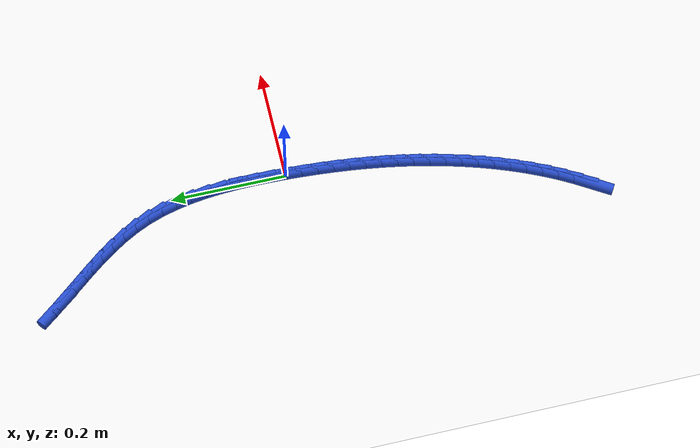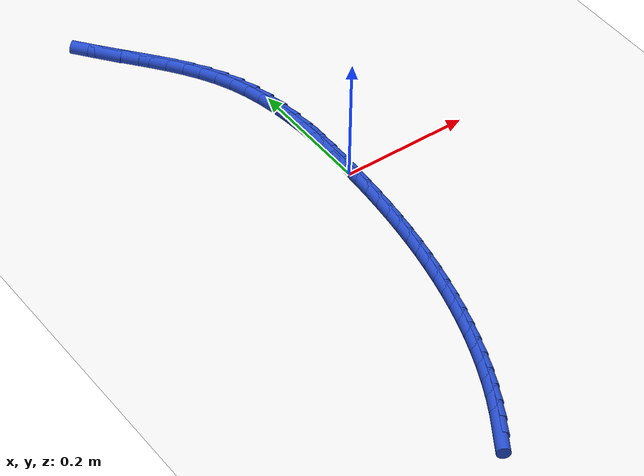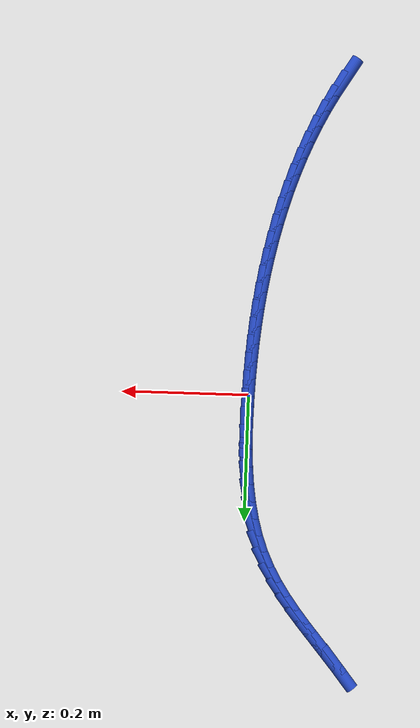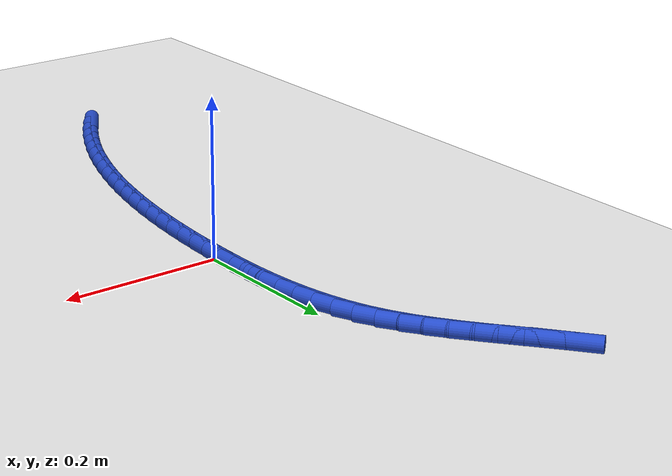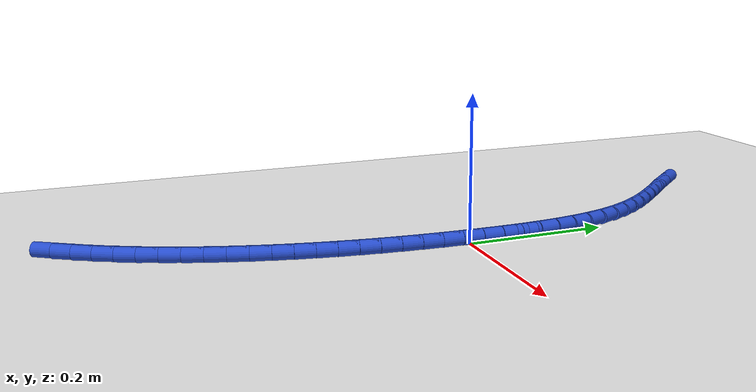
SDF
<sdf version="1.6">
 <world name="default">
  <model name="ground_plane">
   <static>1</static>
   <link name="link">
    <collision name="collision">
     <geometry><plane><normal>0 0 1</normal><size>100 100</size></plane></geometry>
     <surface><friction><ode><mu>100</mu><mu2>50</mu2></ode></friction></surface>
    </collision>
    <visual name="visual">
     <cast_shadows>0</cast_shadows>
     <geometry><plane><normal>0 0 1</normal><size>100 100</size></plane></geometry>
     <material>
      <script><uri>file://media/materials/scripts/gazebo.material</uri><name>Gazebo/WhiteGlow</name></script>
     </material>
    </visual>
   </link>
  </model>
  <model name="line">
   <link name="link_0">
    <pose>-2.3744027577432547e-17 0.0 0.01 0 1.57 1.5411322489004222</pose>
    <collision name="collision">
     <geometry><cylinder><radius>0.01</radius><length>0.08</length></cylinder></geometry>
    </collision>
    <visual name="visual">
     <material>
      <script><name>Gazebo/Blue</name><uri>file://media/materials/scripts/gazebo.material</uri></script>
     </material>
     <geometry><cylinder><radius>0.01</radius><length>0.08</length></cylinder></geometry>
    </visual>
   </link>
   <link name="link_1">
    <pose>0.0008416605181511366 0.028364732303287784 0.01 0 1.57 1.5624884888304773</pose>
    <collision name="collision">
     <geometry><cylinder><radius>0.01</radius><length>0.08</length></cylinder></geometry>
    </collision>
    <visual name="visual">
     <material>
      <script><name>Gazebo/Blue</name><uri>file://media/materials/scripts/gazebo.material</uri></script>
     </material>
     <geometry><cylinder><radius>0.01</radius><length>0.08</length></cylinder></geometry>
    </visual>
   </link>
   <link name="link_2">
    <pose>0.0010783313936273008 0.056851738362290995 0.01 0 1.57 -1.5515653110899565</pose>
    <collision name="collision">
     <geometry><cylinder><radius>0.01</radius><length>0.08</length></cylinder></geometry>
    </collision>
    <visual name="visual">
     <material>
      <script><name>Gazebo/Blue</name><uri>file://media/materials/scripts/gazebo.material</uri></script>
     </material>
     <geometry><cylinder><radius>0.01</radius><length>0.08</length></cylinder></geometry>
    </visual>
   </link>
   <link name="link_3">
    <pose>0.0005308624911587484 0.08531624687828525 0.01 0 1.57 -1.517458055189469</pose>
    <collision name="collision">
     <geometry><cylinder><radius>0.01</radius><length>0.08</length></cylinder></geometry>
    </collision>
    <visual name="visual">
     <material>
      <script><name>Gazebo/Blue</name><uri>file://media/materials/scripts/gazebo.material</uri></script>
     </material>
     <geometry><cylinder><radius>0.01</radius><length>0.08</length></cylinder></geometry>
    </visual>
   </link>
   <link name="link_4">
    <pose>-0.0009798963245242348 0.11361348655254594 0.01 0 1.57 -1.476271643704682</pose>
    <collision name="collision">
     <geometry><cylinder><radius>0.01</radius><length>0.08</length></cylinder></geometry>
    </collision>
    <visual name="visual">
     <material>
      <script><name>Gazebo/Blue</name><uri>file://media/materials/scripts/gazebo.material</uri></script>
     </material>
     <geometry><cylinder><radius>0.01</radius><length>0.08</length></cylinder></geometry>
    </visual>
   </link>
   <link name="link_5">
    <pose>-0.0036330951886913657 0.14159868608634874 0.01 0 1.57 -1.4273986378362373</pose>
    <collision name="collision">
     <geometry><cylinder><radius>0.01</radius><length>0.08</length></cylinder></geometry>
    </collision>
    <visual name="visual">
     <material>
      <script><name>Gazebo/Blue</name><uri>file://media/materials/scripts/gazebo.material</uri></script>
     </material>
     <geometry><cylinder><radius>0.01</radius><length>0.08</length></cylinder></geometry>
    </visual>
   </link>
   <link name="link_6">
    <pose>-0.007607884236612364 0.16912707418096912 0.01 0 1.57 -1.370182999832</pose>
    <collision name="collision">
     <geometry><cylinder><radius>0.01</radius><length>0.08</length></cylinder></geometry>
    </collision>
    <visual name="visual">
     <material>
      <script><name>Gazebo/Blue</name><uri>file://media/materials/scripts/gazebo.material</uri></script>
     </material>
     <geometry><cylinder><radius>0.01</radius><length>0.08</length></cylinder></geometry>
    </visual>
   </link>
   <link name="link_7">
    <pose>-0.013083413603556944 0.19605387953768258 0.01 0 1.57 -1.3040005277934443</pose>
    <collision name="collision">
     <geometry><cylinder><radius>0.01</radius><length>0.08</length></cylinder></geometry>
    </collision>
    <visual name="visual">
     <material>
      <script><name>Gazebo/Blue</name><uri>file://media/materials/scripts/gazebo.material</uri></script>
     </material>
     <geometry><cylinder><radius>0.01</radius><length>0.08</length></cylinder></geometry>
    </visual>
   </link>
   <link name="link_8">
    <pose>-0.020238833424794822 0.22223433085776473 0.01 0 1.57 -1.2283841883100188</pose>
    <collision name="collision">
     <geometry><cylinder><radius>0.01</radius><length>0.08</length></cylinder></geometry>
    </collision>
    <visual name="visual">
     <material>
      <script><name>Gazebo/Blue</name><uri>file://media/materials/scripts/gazebo.material</uri></script>
     </material>
     <geometry><cylinder><radius>0.01</radius><length>0.08</length></cylinder></geometry>
    </visual>
   </link>
   <link name="link_9">
    <pose>-0.029253293835595714 0.2475236568424911 0.01 0 1.57 -1.1437988316661556</pose>
    <collision name="collision">
     <geometry><cylinder><radius>0.01</radius><length>0.08</length></cylinder></geometry>
    </collision>
    <visual name="visual">
     <material>
      <script><name>Gazebo/Blue</name><uri>file://media/materials/scripts/gazebo.material</uri></script>
     </material>
     <geometry><cylinder><radius>0.01</radius><length>0.08</length></cylinder></geometry>
    </visual>
   </link>
   <link name="link_10">
    <pose>-0.04029260205205641 0.2717863004527238 0.01 0 1.57 -1.062321657851553</pose>
    <collision name="collision">
     <geometry><cylinder><radius>0.01</radius><length>0.08</length></cylinder></geometry>
    </collision>
    <visual name="visual">
     <material>
      <script><name>Gazebo/Blue</name><uri>file://media/materials/scripts/gazebo.material</uri></script>
     </material>
     <geometry><cylinder><radius>0.01</radius><length>0.08</length></cylinder></geometry>
    </visual>
   </link>
   <link name="link_11">
    <pose>-0.053266393164274575 0.295063610200294 0.01 0 1.57 -0.9954584736030949</pose>
    <collision name="collision">
     <geometry><cylinder><radius>0.01</radius><length>0.08</length></cylinder></geometry>
    </collision>
    <visual name="visual">
     <material>
      <script><name>Gazebo/Blue</name><uri>file://media/materials/scripts/gazebo.material</uri></script>
     </material>
     <geometry><cylinder><radius>0.01</radius><length>0.08</length></cylinder></geometry>
    </visual>
   </link>
   <link name="link_12">
    <pose>-0.06785349010132992 0.31755632724116223 0.01 0 1.57 -0.9439994217995893</pose>
    <collision name="collision">
     <geometry><cylinder><radius>0.01</radius><length>0.08</length></cylinder></geometry>
    </collision>
    <visual name="visual">
     <material>
      <script><name>Gazebo/Blue</name><uri>file://media/materials/scripts/gazebo.material</uri></script>
     </material>
     <geometry><cylinder><radius>0.01</radius><length>0.08</length></cylinder></geometry>
    </visual>
   </link>
   <link name="link_13">
    <pose>-0.08372446215069532 0.33947089247325024 0.01 0 1.57 -0.9077357040851978</pose>
    <collision name="collision">
     <geometry><cylinder><radius>0.01</radius><length>0.08</length></cylinder></geometry>
    </collision>
    <visual name="visual">
     <material>
      <script><name>Gazebo/Blue</name><uri>file://media/materials/scripts/gazebo.material</uri></script>
     </material>
     <geometry><cylinder><radius>0.01</radius><length>0.08</length></cylinder></geometry>
    </visual>
   </link>
   <link name="link_14">
    <pose>-0.10054987859984388 0.3610137467944801 0.01 0 1.57 -0.8861976645155711</pose>
    <collision name="collision">
     <geometry><cylinder><radius>0.01</radius><length>0.08</length></cylinder></geometry>
    </collision>
    <visual name="visual">
     <material>
      <script><name>Gazebo/Blue</name><uri>file://media/materials/scripts/gazebo.material</uri></script>
     </material>
     <geometry><cylinder><radius>0.01</radius><length>0.08</length></cylinder></geometry>
    </visual>
   </link>
   <link name="link_15">
    <pose>-0.11800030873624849 0.3823913311027736 0.01 0 1.57 -0.8789013955237226</pose>
    <collision name="collision">
     <geometry><cylinder><radius>0.01</radius><length>0.08</length></cylinder></geometry>
    </collision>
    <visual name="visual">
     <material>
      <script><name>Gazebo/Blue</name><uri>file://media/materials/scripts/gazebo.material</uri></script>
     </material>
     <geometry><cylinder><radius>0.01</radius><length>0.08</length></cylinder></geometry>
    </visual>
   </link>
   <link name="link_16">
    <pose>-0.1357463218473822 0.4038100862960529 0.01 0 1.57 -0.885477847881823</pose>
    <collision name="collision">
     <geometry><cylinder><radius>0.01</radius><length>0.08</length></cylinder></geometry>
    </collision>
    <visual name="visual">
     <material>
      <script><name>Gazebo/Blue</name><uri>file://media/materials/scripts/gazebo.material</uri></script>
     </material>
     <geometry><cylinder><radius>0.01</radius><length>0.08</length></cylinder></geometry>
    </visual>
   </link>
   <link name="link_17">
    <pose>-0.153458487220718 0.4254764532722397 0.01 0 1.57 -0.9057065667550356</pose>
    <collision name="collision">
     <geometry><cylinder><radius>0.01</radius><length>0.08</length></cylinder></geometry>
    </collision>
    <visual name="visual">
     <material>
      <script><name>Gazebo/Blue</name><uri>file://media/materials/scripts/gazebo.material</uri></script>
     </material>
     <geometry><cylinder><radius>0.01</radius><length>0.08</length></cylinder></geometry>
    </visual>
   </link>
   <link name="link_221">
    <pose>-0.13516900918710223 -0.501833798788159 0.01 0 1.57 1.014440203128544</pose>
    <collision name="collision">
     <geometry><cylinder><radius>0.01</radius><length>0.08</length></cylinder></geometry>
    </collision>
    <visual name="visual">
     <material>
      <script><name>Gazebo/Blue</name><uri>file://media/materials/scripts/gazebo.material</uri></script>
     </material>
     <geometry><cylinder><radius>0.01</radius><length>0.08</length></cylinder></geometry>
    </visual>
   </link>
   <link name="link_222">
    <pose>-0.12067703683869124 -0.4785304965262335 0.01 0 1.57 1.058250426274784</pose>
    <collision name="collision">
     <geometry><cylinder><radius>0.01</radius><length>0.08</length></cylinder></geometry>
    </collision>
    <visual name="visual">
     <material>
      <script><name>Gazebo/Blue</name><uri>file://media/materials/scripts/gazebo.material</uri></script>
     </material>
     <geometry><cylinder><radius>0.01</radius><length>0.08</length></cylinder></geometry>
    </visual>
   </link>
   <link name="link_223">
    <pose>-0.10716694602606656 -0.454521348151872 0.01 0 1.57 1.099458331086678</pose>
    <collision name="collision">
     <geometry><cylinder><radius>0.01</radius><length>0.08</length></cylinder></geometry>
    </collision>
    <visual name="visual">
     <material>
      <script><name>Gazebo/Blue</name><uri>file://media/materials/scripts/gazebo.material</uri></script>
     </material>
     <geometry><cylinder><radius>0.01</radius><length>0.08</length></cylinder></geometry>
    </visual>
   </link>
   <link name="link_224">
    <pose>-0.09461101090585648 -0.42988497377403767 0.01 0 1.57 1.1382023825438004</pose>
    <collision name="collision">
     <geometry><cylinder><radius>0.01</radius><length>0.08</length></cylinder></geometry>
    </collision>
    <visual name="visual">
     <material>
      <script><name>Gazebo/Blue</name><uri>file://media/materials/scripts/gazebo.material</uri></script>
     </material>
     <geometry><cylinder><radius>0.01</radius><length>0.08</length></cylinder></geometry>
    </visual>
   </link>
   <link name="link_225">
    <pose>-0.08298149301156066 -0.40470000880055557 0.01 0 1.57 1.1746346666825476</pose>
    <collision name="collision">
     <geometry><cylinder><radius>0.01</radius><length>0.08</length></cylinder></geometry>
    </collision>
    <visual name="visual">
     <material>
      <script><name>Gazebo/Blue</name><uri>file://media/materials/scripts/gazebo.material</uri></script>
     </material>
     <geometry><cylinder><radius>0.01</radius><length>0.08</length></cylinder></geometry>
    </visual>
   </link>
   <link name="link_226">
    <pose>-0.07225065387667906 -0.379045088639251 0.01 0 1.57 1.208913785473935</pose>
    <collision name="collision">
     <geometry><cylinder><radius>0.01</radius><length>0.08</length></cylinder></geometry>
    </collision>
    <visual name="visual">
     <material>
      <script><name>Gazebo/Blue</name><uri>file://media/materials/scripts/gazebo.material</uri></script>
     </material>
     <geometry><cylinder><radius>0.01</radius><length>0.08</length></cylinder></geometry>
    </visual>
   </link>
   <link name="link_227">
    <pose>-0.06239075503471175 -0.3529988486979498 0.01 0 1.57 1.2412000994785684</pose>
    <collision name="collision">
     <geometry><cylinder><radius>0.01</radius><length>0.08</length></cylinder></geometry>
    </collision>
    <visual name="visual">
     <material>
      <script><name>Gazebo/Blue</name><uri>file://media/materials/scripts/gazebo.material</uri></script>
     </material>
     <geometry><cylinder><radius>0.01</radius><length>0.08</length></cylinder></geometry>
    </visual>
   </link>
   <link name="link_228">
    <pose>-0.05337405801915875 -0.3266399243844772 0.01 0 1.57 1.2716523869807266</pose>
    <collision name="collision">
     <geometry><cylinder><radius>0.01</radius><length>0.08</length></cylinder></geometry>
    </collision>
    <visual name="visual">
     <material>
      <script><name>Gazebo/Blue</name><uri>file://media/materials/scripts/gazebo.material</uri></script>
     </material>
     <geometry><cylinder><radius>0.01</radius><length>0.08</length></cylinder></geometry>
    </visual>
   </link>
   <link name="link_229">
    <pose>-0.045172824363520055 -0.3000469511066589 0.01 0 1.57 1.300425665909438</pose>
    <collision name="collision">
     <geometry><cylinder><radius>0.01</radius><length>0.08</length></cylinder></geometry>
    </collision>
    <visual name="visual">
     <material>
      <script><name>Gazebo/Blue</name><uri>file://media/materials/scripts/gazebo.material</uri></script>
     </material>
     <geometry><cylinder><radius>0.01</radius><length>0.08</length></cylinder></geometry>
    </visual>
   </link>
   <link name="link_230">
    <pose>-0.0377593156012955 -0.2732985642723198 0.01 0 1.57 1.3276811198058143</pose>
    <collision name="collision">
     <geometry><cylinder><radius>0.01</radius><length>0.08</length></cylinder></geometry>
    </collision>
    <visual name="visual">
     <material>
      <script><name>Gazebo/Blue</name><uri>file://media/materials/scripts/gazebo.material</uri></script>
     </material>
     <geometry><cylinder><radius>0.01</radius><length>0.08</length></cylinder></geometry>
    </visual>
   </link>
   <link name="link_231">
    <pose>-0.031105695890091583 -0.24647172389175065 0.01 0 1.57 1.3538290859691098</pose>
    <collision name="collision">
     <geometry><cylinder><radius>0.01</radius><length>0.08</length></cylinder></geometry>
    </collision>
    <visual name="visual">
     <material>
      <script><name>Gazebo/Blue</name><uri>file://media/materials/scripts/gazebo.material</uri></script>
     </material>
     <geometry><cylinder><radius>0.01</radius><length>0.08</length></cylinder></geometry>
    </visual>
   </link>
   <link name="link_232">
    <pose>-0.025181406281571294 -0.21959653767121393 0.01 0 1.57 1.3791362395508837</pose>
    <collision name="collision">
     <geometry><cylinder><radius>0.01</radius><length>0.08</length></cylinder></geometry>
    </collision>
    <visual name="visual">
     <material>
      <script><name>Gazebo/Blue</name><uri>file://media/materials/scripts/gazebo.material</uri></script>
     </material>
     <geometry><cylinder><radius>0.01</radius><length>0.08</length></cylinder></geometry>
    </visual>
   </link>
   <link name="link_233">
    <pose>-0.01995286552633867 -0.1926511132218419 0.01 0 1.57 1.4034959594415495</pose>
    <collision name="collision">
     <geometry><cylinder><radius>0.01</radius><length>0.08</length></cylinder></geometry>
    </collision>
    <visual name="visual">
     <material>
      <script><name>Gazebo/Blue</name><uri>file://media/materials/scripts/gazebo.material</uri></script>
     </material>
     <geometry><cylinder><radius>0.01</radius><length>0.08</length></cylinder></geometry>
    </visual>
   </link>
   <link name="link_234">
    <pose>-0.015386334956158423 -0.165610849690434 0.01 0 1.57 1.4267962250306168</pose>
    <collision name="collision">
     <geometry><cylinder><radius>0.01</radius><length>0.08</length></cylinder></geometry>
    </collision>
    <visual name="visual">
     <material>
      <script><name>Gazebo/Blue</name><uri>file://media/materials/scripts/gazebo.material</uri></script>
     </material>
     <geometry><cylinder><radius>0.01</radius><length>0.08</length></cylinder></geometry>
    </visual>
   </link>
   <link name="link_235">
    <pose>-0.011448075902795252 -0.1384511462237896 0.01 0 1.57 1.4489390743799782</pose>
    <collision name="collision">
     <geometry><cylinder><radius>0.01</radius><length>0.08</length></cylinder></geometry>
    </collision>
    <visual name="visual">
     <material>
      <script><name>Gazebo/Blue</name><uri>file://media/materials/scripts/gazebo.material</uri></script>
     </material>
     <geometry><cylinder><radius>0.01</radius><length>0.08</length></cylinder></geometry>
    </visual>
   </link>
   <link name="link_236">
    <pose>-0.008104349698013855 -0.11114740196870816 0.01 0 1.57 1.4698414565880435</pose>
    <collision name="collision">
     <geometry><cylinder><radius>0.01</radius><length>0.08</length></cylinder></geometry>
    </collision>
    <visual name="visual">
     <material>
      <script><name>Gazebo/Blue</name><uri>file://media/materials/scripts/gazebo.material</uri></script>
     </material>
     <geometry><cylinder><radius>0.01</radius><length>0.08</length></cylinder></geometry>
    </visual>
   </link>
   <link name="link_237">
    <pose>-0.005321417673578938 -0.08367501607198914 0.01 0 1.57 1.489435562626035</pose>
    <collision name="collision">
     <geometry><cylinder><radius>0.01</radius><length>0.08</length></cylinder></geometry>
    </collision>
    <visual name="visual">
     <material>
      <script><name>Gazebo/Blue</name><uri>file://media/materials/scripts/gazebo.material</uri></script>
     </material>
     <geometry><cylinder><radius>0.01</radius><length>0.08</length></cylinder></geometry>
    </visual>
   </link>
   <link name="link_238">
    <pose>-0.0030655411612551435 -0.056009387680431164 0.01 0 1.57 1.5076686883911379</pose>
    <collision name="collision">
     <geometry><cylinder><radius>0.01</radius><length>0.08</length></cylinder></geometry>
    </collision>
    <visual name="visual">
     <material>
      <script><name>Gazebo/Blue</name><uri>file://media/materials/scripts/gazebo.material</uri></script>
     </material>
     <geometry><cylinder><radius>0.01</radius><length>0.08</length></cylinder></geometry>
    </visual>
   </link>
   <link name="link_239">
    <pose>-0.0013029814928072927 -0.028125915940835196 0.01 0 1.57 1.5245027036402352</pose>
    <collision name="collision">
     <geometry><cylinder><radius>0.01</radius><length>0.08</length></cylinder></geometry>
    </collision>
    <visual name="visual">
     <material>
      <script><name>Gazebo/Blue</name><uri>file://media/materials/scripts/gazebo.material</uri></script>
     </material>
     <geometry><cylinder><radius>0.01</radius><length>0.08</length></cylinder></geometry>
    </visual>
   </link>
   <link name="link_240">
    <pose>-2.0383000842727483e-17 1.0408340855860843e-16 0.01 0 1.57 1.5399132109115932</pose>
    <collision name="collision">
     <geometry><cylinder><radius>0.01</radius><length>0.08</length></cylinder></geometry>
    </collision>
    <visual name="visual">
     <material>
      <script><name>Gazebo/Blue</name><uri>file://media/materials/scripts/gazebo.material</uri></script>
     </material>
     <geometry><cylinder><radius>0.01</radius><length>0.08</length></cylinder></geometry>
    </visual>
   </link>
   <link name="link_241">
    <pose>0.0008771419854019739 0.028392960995275315 0.01 0 1.57 1.553888480486588</pose>
    <collision name="collision">
     <geometry><cylinder><radius>0.01</radius><length>0.08</length></cylinder></geometry>
    </collision>
    <visual name="visual">
     <material>
      <script><name>Gazebo/Blue</name><uri>file://media/materials/scripts/gazebo.material</uri></script>
     </material>
     <geometry><cylinder><radius>0.01</radius><length>0.08</length></cylinder></geometry>
    </visual>
   </link>
   <link name="link_242">
    <pose>0.0013621831316339879 0.057077567898191 0.01 0 1.57 1.5469353836124078</pose>
    <collision name="collision">
     <geometry><cylinder><radius>0.01</radius><length>0.08</length></cylinder></geometry>
    </collision>
    <visual name="visual">
     <material>
      <script><name>Gazebo/Blue</name><uri>file://media/materials/scripts/gazebo.material</uri></script>
     </material>
     <geometry><cylinder><radius>0.01</radius><length>0.08</length></cylinder></geometry>
    </visual>
   </link>
  </model>
 </world>
</sdf>
